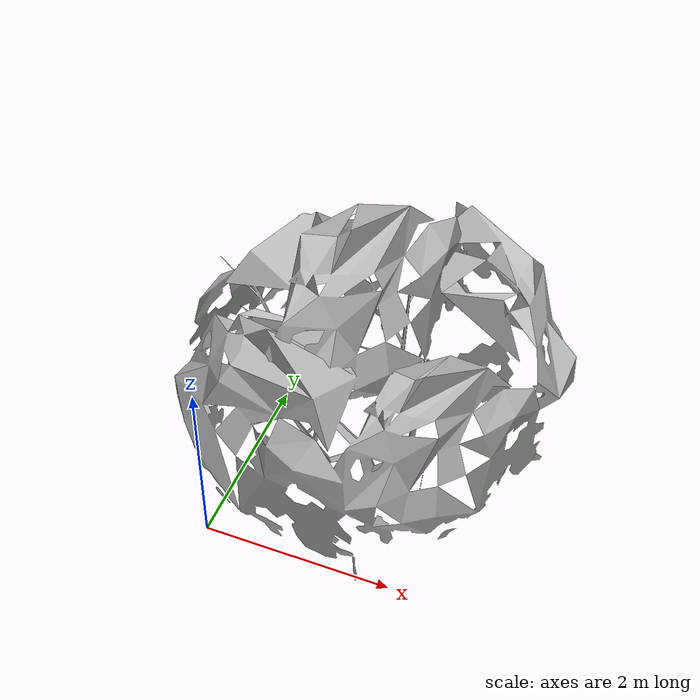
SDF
<?xml version="1.0" ?>
<sdf version="1.5">
  <model name="OliveTree2">
      <static>true</static>
      <link name="OliveTree2_link">
	  <collision name="OliveTree2_collision">
	      <geometry>
		  <mesh>
		    <uri>model://OliveTree2/meshes/OliveTree2.dae</uri>
		    <scale>1 1 1</scale>
		  </mesh>
	      </geometry>
	  </collision>
	  <visual name="OliveTree2_visual">
	      <geometry>
		<mesh>
		  <uri>model://OliveTree2/meshes/OliveTree2.dae</uri>
		  <scale>1 1 1</scale>
		</mesh>
	      </geometry>
	      <cast_shadows>false</cast_shadows>
	  </visual>
      </link>
    </model>
</sdf>
